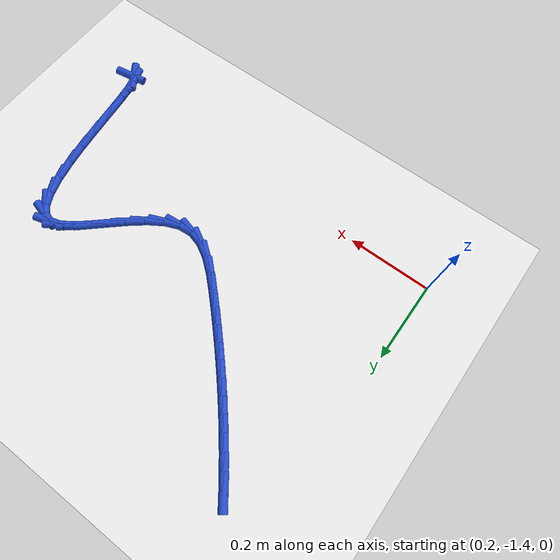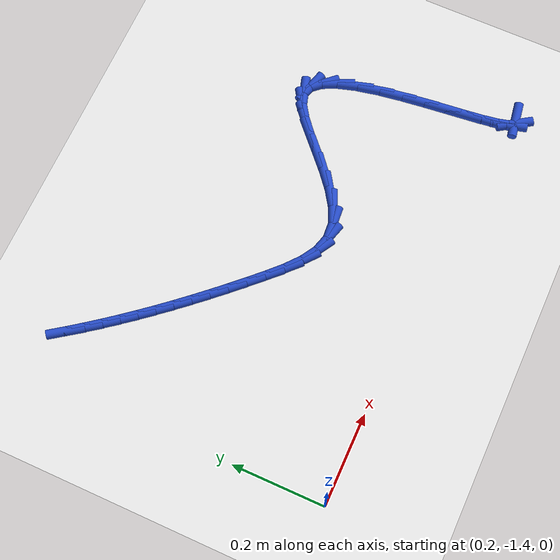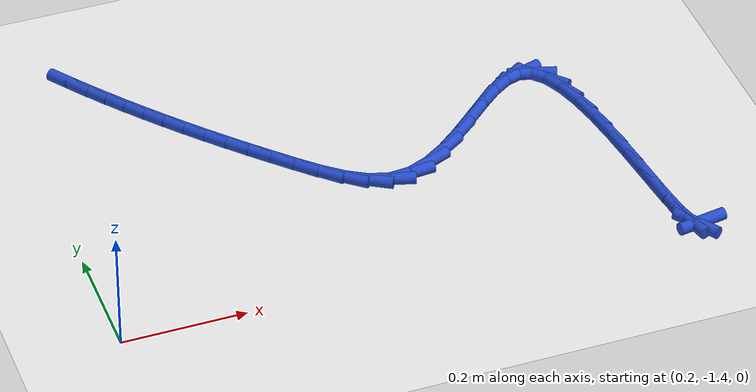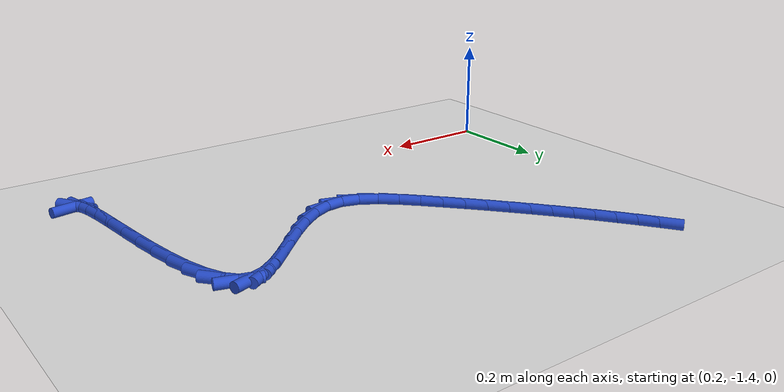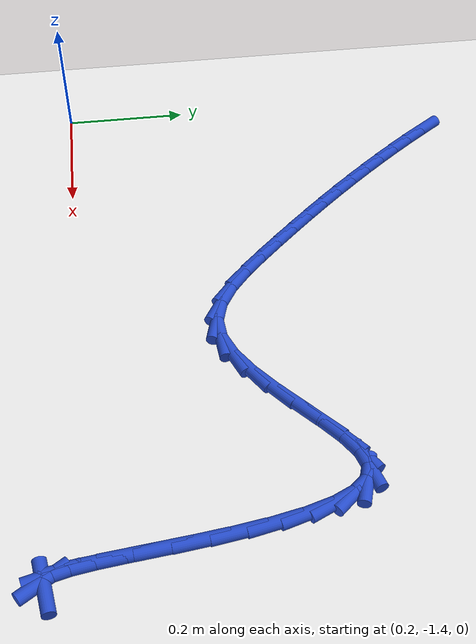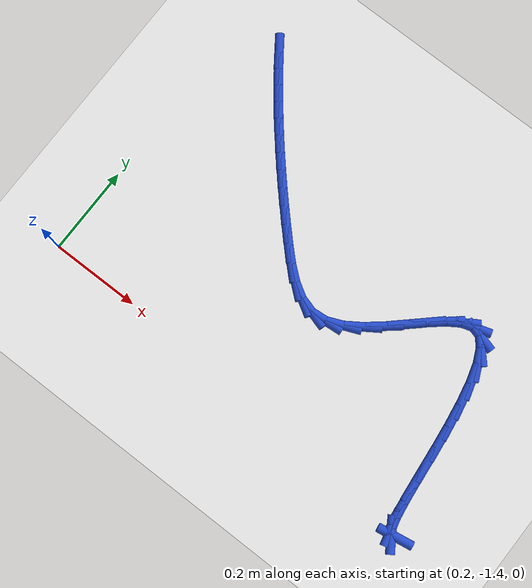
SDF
<sdf version="1.6">
 <world name="default">
  <model name="ground_plane">
   <static>1</static>
   <link name="link">
    <collision name="collision">
     <geometry><plane><normal>0 0 1</normal><size>100 100</size></plane></geometry>
     <surface><friction><ode><mu>100</mu><mu2>50</mu2></ode></friction></surface>
    </collision>
    <visual name="visual">
     <cast_shadows>0</cast_shadows>
     <geometry><plane><normal>0 0 1</normal><size>100 100</size></plane></geometry>
     <material>
      <script><uri>file://media/materials/scripts/gazebo.material</uri><name>Gazebo/WhiteGlow</name></script>
     </material>
    </visual>
   </link>
  </model>
  <model name="line">
   <link name="link_169">
    <pose>1.123807163305679 -1.444839577102646 0.01 0 1.57 0.16254865125649903</pose>
    <collision name="collision">
     <geometry><cylinder><radius>0.01</radius><length>0.08</length></cylinder></geometry>
    </collision>
    <visual name="visual">
     <material>
      <script><name>Gazebo/Blue</name><uri>file://media/materials/scripts/gazebo.material</uri></script>
     </material>
     <geometry><cylinder><radius>0.01</radius><length>0.08</length></cylinder></geometry>
    </visual>
   </link>
   <link name="link_170">
    <pose>1.1149827705949273 -1.4462867384065723 0.01 0 1.57 -0.9904454357600528</pose>
    <collision name="collision">
     <geometry><cylinder><radius>0.01</radius><length>0.08</length></cylinder></geometry>
    </collision>
    <visual name="visual">
     <material>
      <script><name>Gazebo/Blue</name><uri>file://media/materials/scripts/gazebo.material</uri></script>
     </material>
     <geometry><cylinder><radius>0.01</radius><length>0.08</length></cylinder></geometry>
    </visual>
   </link>
   <link name="link_171">
    <pose>1.1076836466904414 -1.4351544262905538 0.01 0 1.57 -1.3181885237503095</pose>
    <collision name="collision">
     <geometry><cylinder><radius>0.01</radius><length>0.08</length></cylinder></geometry>
    </collision>
    <visual name="visual">
     <material>
      <script><name>Gazebo/Blue</name><uri>file://media/materials/scripts/gazebo.material</uri></script>
     </material>
     <geometry><cylinder><radius>0.01</radius><length>0.08</length></cylinder></geometry>
    </visual>
   </link>
   <link name="link_172">
    <pose>1.1016304934707999 -1.4117036456909045 0.01 0 1.57 -1.4159981728100852</pose>
    <collision name="collision">
     <geometry><cylinder><radius>0.01</radius><length>0.08</length></cylinder></geometry>
    </collision>
    <visual name="visual">
     <material>
      <script><name>Gazebo/Blue</name><uri>file://media/materials/scripts/gazebo.material</uri></script>
     </material>
     <geometry><cylinder><radius>0.01</radius><length>0.08</length></cylinder></geometry>
    </visual>
   </link>
   <link name="link_173">
    <pose>1.096397547103324 -1.3781691286143805 0.01 0 1.57 -1.4539515287016036</pose>
    <collision name="collision">
     <geometry><cylinder><radius>0.01</radius><length>0.08</length></cylinder></geometry>
    </collision>
    <visual name="visual">
     <material>
      <script><name>Gazebo/Blue</name><uri>file://media/materials/scripts/gazebo.material</uri></script>
     </material>
     <geometry><cylinder><radius>0.01</radius><length>0.08</length></cylinder></geometry>
    </visual>
   </link>
   <link name="link_174">
    <pose>1.091551656430861 -1.3368851563899982 0.01 0 1.57 -1.4664216416486986</pose>
    <collision name="collision">
     <geometry><cylinder><radius>0.01</radius><length>0.08</length></cylinder></geometry>
    </collision>
    <visual name="visual">
     <material>
      <script><name>Gazebo/Blue</name><uri>file://media/materials/scripts/gazebo.material</uri></script>
     </material>
     <geometry><cylinder><radius>0.01</radius><length>0.08</length></cylinder></geometry>
    </visual>
   </link>
   <link name="link_175">
    <pose>1.0866596702962572 -1.2901860103467704 0.01 0 1.57 -1.4633128278108793</pose>
    <collision name="collision">
     <geometry><cylinder><radius>0.01</radius><length>0.08</length></cylinder></geometry>
    </collision>
    <visual name="visual">
     <material>
      <script><name>Gazebo/Blue</name><uri>file://media/materials/scripts/gazebo.material</uri></script>
     </material>
     <geometry><cylinder><radius>0.01</radius><length>0.08</length></cylinder></geometry>
    </visual>
   </link>
   <link name="link_176">
    <pose>1.081288437542361 -1.2404059718137157 0.01 0 1.57 -1.4470688776996505</pose>
    <collision name="collision">
     <geometry><cylinder><radius>0.01</radius><length>0.08</length></cylinder></geometry>
    </collision>
    <visual name="visual">
     <material>
      <script><name>Gazebo/Blue</name><uri>file://media/materials/scripts/gazebo.material</uri></script>
     </material>
     <geometry><cylinder><radius>0.01</radius><length>0.08</length></cylinder></geometry>
    </visual>
   </link>
   <link name="link_177">
    <pose>1.0750048070120202 -1.1898793221198487 0.01 0 1.57 -1.4161493898350193</pose>
    <collision name="collision">
     <geometry><cylinder><radius>0.01</radius><length>0.08</length></cylinder></geometry>
    </collision>
    <visual name="visual">
     <material>
      <script><name>Gazebo/Blue</name><uri>file://media/materials/scripts/gazebo.material</uri></script>
     </material>
     <geometry><cylinder><radius>0.01</radius><length>0.08</length></cylinder></geometry>
    </visual>
   </link>
   <link name="link_178">
    <pose>1.0673756275480821 -1.140940342594184 0.01 0 1.57 -1.364776546028027</pose>
    <collision name="collision">
     <geometry><cylinder><radius>0.01</radius><length>0.08</length></cylinder></geometry>
    </collision>
    <visual name="visual">
     <material>
      <script><name>Gazebo/Blue</name><uri>file://media/materials/scripts/gazebo.material</uri></script>
     </material>
     <geometry><cylinder><radius>0.01</radius><length>0.08</length></cylinder></geometry>
    </visual>
   </link>
   <link name="link_179">
    <pose>1.057967747993393 -1.095923314565736 0.01 0 1.57 -1.2795409150297383</pose>
    <collision name="collision">
     <geometry><cylinder><radius>0.01</radius><length>0.08</length></cylinder></geometry>
    </collision>
    <visual name="visual">
     <material>
      <script><name>Gazebo/Blue</name><uri>file://media/materials/scripts/gazebo.material</uri></script>
     </material>
     <geometry><cylinder><radius>0.01</radius><length>0.08</length></cylinder></geometry>
    </visual>
   </link>
   <link name="link_180">
    <pose>1.046348017190802 -1.0571625193635237 0.01 0 1.57 -1.1291384458094977</pose>
    <collision name="collision">
     <geometry><cylinder><radius>0.01</radius><length>0.08</length></cylinder></geometry>
    </collision>
    <visual name="visual">
     <material>
      <script><name>Gazebo/Blue</name><uri>file://media/materials/scripts/gazebo.material</uri></script>
     </material>
     <geometry><cylinder><radius>0.01</radius><length>0.08</length></cylinder></geometry>
    </visual>
   </link>
   <link name="link_181">
    <pose>1.032083283983155 -1.0269922383165597 0.01 0 1.57 -0.8373514634935061</pose>
    <collision name="collision">
     <geometry><cylinder><radius>0.01</radius><length>0.08</length></cylinder></geometry>
    </collision>
    <visual name="visual">
     <material>
      <script><name>Gazebo/Blue</name><uri>file://media/materials/scripts/gazebo.material</uri></script>
     </material>
     <geometry><cylinder><radius>0.01</radius><length>0.08</length></cylinder></geometry>
    </visual>
   </link>
   <link name="link_182">
    <pose>1.014740397213301 -1.0077467527538602 0.01 0 1.57 -0.28093226712526403</pose>
    <collision name="collision">
     <geometry><cylinder><radius>0.01</radius><length>0.08</length></cylinder></geometry>
    </collision>
    <visual name="visual">
     <material>
      <script><name>Gazebo/Blue</name><uri>file://media/materials/scripts/gazebo.material</uri></script>
     </material>
     <geometry><cylinder><radius>0.01</radius><length>0.08</length></cylinder></geometry>
    </visual>
   </link>
   <link name="link_183">
    <pose>0.9938914519252556 -1.0017304987347346 0.01 0 1.57 0.29862523486121023</pose>
    <collision name="collision">
     <geometry><cylinder><radius>0.01</radius><length>0.08</length></cylinder></geometry>
    </collision>
    <visual name="visual">
     <material>
      <script><name>Gazebo/Blue</name><uri>file://media/materials/scripts/gazebo.material</uri></script>
     </material>
     <geometry><cylinder><radius>0.01</radius><length>0.08</length></cylinder></geometry>
    </visual>
   </link>
   <link name="link_184">
    <pose>0.9694594894111312 -1.009251403780576 0.01 0 1.57 0.5828584093191366</pose>
    <collision name="collision">
     <geometry><cylinder><radius>0.01</radius><length>0.08</length></cylinder></geometry>
    </collision>
    <visual name="visual">
     <material>
      <script><name>Gazebo/Blue</name><uri>file://media/materials/scripts/gazebo.material</uri></script>
     </material>
     <geometry><cylinder><radius>0.01</radius><length>0.08</length></cylinder></geometry>
    </visual>
   </link>
   <link name="link_185">
    <pose>0.9419334050490917 -1.0273982912902844 0.01 0 1.57 0.7045271127174868</pose>
    <collision name="collision">
     <geometry><cylinder><radius>0.01</radius><length>0.08</length></cylinder></geometry>
    </collision>
    <visual name="visual">
     <material>
      <script><name>Gazebo/Blue</name><uri>file://media/materials/scripts/gazebo.material</uri></script>
     </material>
     <geometry><cylinder><radius>0.01</radius><length>0.08</length></cylinder></geometry>
    </visual>
   </link>
   <link name="link_186">
    <pose>0.911853421018685 -1.0529679900973639 0.01 0 1.57 0.748178597287051</pose>
    <collision name="collision">
     <geometry><cylinder><radius>0.01</radius><length>0.08</length></cylinder></geometry>
    </collision>
    <visual name="visual">
     <material>
      <script><name>Gazebo/Blue</name><uri>file://media/materials/scripts/gazebo.material</uri></script>
     </material>
     <geometry><cylinder><radius>0.01</radius><length>0.08</length></cylinder></geometry>
    </visual>
   </link>
   <link name="link_187">
    <pose>0.8797597594994603 -1.0827573290353183 0.01 0 1.57 0.7425289419034289</pose>
    <collision name="collision">
     <geometry><cylinder><radius>0.01</radius><length>0.08</length></cylinder></geometry>
    </collision>
    <visual name="visual">
     <material>
      <script><name>Gazebo/Blue</name><uri>file://media/materials/scripts/gazebo.material</uri></script>
     </material>
     <geometry><cylinder><radius>0.01</radius><length>0.08</length></cylinder></geometry>
    </visual>
   </link>
   <link name="link_188">
    <pose>0.8461926426709651 -1.1135631369376535 0.01 0 1.57 0.6924900054286713</pose>
    <collision name="collision">
     <geometry><cylinder><radius>0.01</radius><length>0.08</length></cylinder></geometry>
    </collision>
    <visual name="visual">
     <material>
      <script><name>Gazebo/Blue</name><uri>file://media/materials/scripts/gazebo.material</uri></script>
     </material>
     <geometry><cylinder><radius>0.01</radius><length>0.08</length></cylinder></geometry>
    </visual>
   </link>
   <link name="link_189">
    <pose>0.8116922927127497 -1.1421822426378714 0.01 0 1.57 0.5873474112786153</pose>
    <collision name="collision">
     <geometry><cylinder><radius>0.01</radius><length>0.08</length></cylinder></geometry>
    </collision>
    <visual name="visual">
     <material>
      <script><name>Gazebo/Blue</name><uri>file://media/materials/scripts/gazebo.material</uri></script>
     </material>
     <geometry><cylinder><radius>0.01</radius><length>0.08</length></cylinder></geometry>
    </visual>
   </link>
   <link name="link_190">
    <pose>0.7767989318043615 -1.165411474969477 0.01 0 1.57 0.3986747367066922</pose>
    <collision name="collision">
     <geometry><cylinder><radius>0.01</radius><length>0.08</length></cylinder></geometry>
    </collision>
    <visual name="visual">
     <material>
      <script><name>Gazebo/Blue</name><uri>file://media/materials/scripts/gazebo.material</uri></script>
     </material>
     <geometry><cylinder><radius>0.01</radius><length>0.08</length></cylinder></geometry>
    </visual>
   </link>
   <link name="link_191">
    <pose>0.7420527821253495 -1.1800476627659746 0.01 0 1.57 0.0847722710306101</pose>
    <collision name="collision">
     <geometry><cylinder><radius>0.01</radius><length>0.08</length></cylinder></geometry>
    </collision>
    <visual name="visual">
     <material>
      <script><name>Gazebo/Blue</name><uri>file://media/materials/scripts/gazebo.material</uri></script>
     </material>
     <geometry><cylinder><radius>0.01</radius><length>0.08</length></cylinder></geometry>
    </visual>
   </link>
   <link name="link_192">
    <pose>0.7079892207806718 -1.182942245360982 0.01 0 1.57 -0.2800814104062795</pose>
    <collision name="collision">
     <geometry><cylinder><radius>0.01</radius><length>0.08</length></cylinder></geometry>
    </collision>
    <visual name="visual">
     <material>
      <script><name>Gazebo/Blue</name><uri>file://media/materials/scripts/gazebo.material</uri></script>
     </material>
     <geometry><cylinder><radius>0.01</radius><length>0.08</length></cylinder></geometry>
    </visual>
   </link>
   <link name="link_193">
    <pose>0.674923208054617 -1.1734310557928946 0.01 0 1.57 -0.537931428475862</pose>
    <collision name="collision">
     <geometry><cylinder><radius>0.01</radius><length>0.08</length></cylinder></geometry>
    </collision>
    <visual name="visual">
     <material>
      <script><name>Gazebo/Blue</name><uri>file://media/materials/scripts/gazebo.material</uri></script>
     </material>
     <geometry><cylinder><radius>0.01</radius><length>0.08</length></cylinder></geometry>
    </visual>
   </link>
   <link name="link_194">
    <pose>0.6428633068567104 -1.154303437166628 0.01 0 1.57 -0.691113899626166</pose>
    <collision name="collision">
     <geometry><cylinder><radius>0.01</radius><length>0.08</length></cylinder></geometry>
    </collision>
    <visual name="visual">
     <material>
      <script><name>Gazebo/Blue</name><uri>file://media/materials/scripts/gazebo.material</uri></script>
     </material>
     <geometry><cylinder><radius>0.01</radius><length>0.08</length></cylinder></geometry>
    </visual>
   </link>
   <link name="link_195">
    <pose>0.6117954520044355 -1.1286037815858532 0.01 0 1.57 -0.7708574763580924</pose>
    <collision name="collision">
     <geometry><cylinder><radius>0.01</radius><length>0.08</length></cylinder></geometry>
    </collision>
    <visual name="visual">
     <material>
      <script><name>Gazebo/Blue</name><uri>file://media/materials/scripts/gazebo.material</uri></script>
     </material>
     <geometry><cylinder><radius>0.01</radius><length>0.08</length></cylinder></geometry>
    </visual>
   </link>
   <link name="link_196">
    <pose>0.5817055783152759 -1.0993764811542417 0.01 0 1.57 -0.7988185969387164</pose>
    <collision name="collision">
     <geometry><cylinder><radius>0.01</radius><length>0.08</length></cylinder></geometry>
    </collision>
    <visual name="visual">
     <material>
      <script><name>Gazebo/Blue</name><uri>file://media/materials/scripts/gazebo.material</uri></script>
     </material>
     <geometry><cylinder><radius>0.01</radius><length>0.08</length></cylinder></geometry>
    </visual>
   </link>
   <link name="link_197">
    <pose>0.5525781178344619 -1.069456531248069 0.01 0 1.57 -0.8106812663818429</pose>
    <collision name="collision">
     <geometry><cylinder><radius>0.01</radius><length>0.08</length></cylinder></geometry>
    </collision>
    <visual name="visual">
     <material>
      <script><name>Gazebo/Blue</name><uri>file://media/materials/scripts/gazebo.material</uri></script>
     </material>
     <geometry><cylinder><radius>0.01</radius><length>0.08</length></cylinder></geometry>
    </visual>
   </link>
   <link name="link_198">
    <pose>0.5243840142723867 -1.0397994587022674 0.01 0 1.57 -0.8230011563124844</pose>
    <collision name="collision">
     <geometry><cylinder><radius>0.01</radius><length>0.08</length></cylinder></geometry>
    </collision>
    <visual name="visual">
     <material>
      <script><name>Gazebo/Blue</name><uri>file://media/materials/scripts/gazebo.material</uri></script>
     </material>
     <geometry><cylinder><radius>0.01</radius><length>0.08</length></cylinder></geometry>
    </visual>
   </link>
   <link name="link_199">
    <pose>0.49708708916940886 -1.0103683850858092 0.01 0 1.57 -0.8359044172267449</pose>
    <collision name="collision">
     <geometry><cylinder><radius>0.01</radius><length>0.08</length></cylinder></geometry>
    </collision>
    <visual name="visual">
     <material>
      <script><name>Gazebo/Blue</name><uri>file://media/materials/scripts/gazebo.material</uri></script>
     </material>
     <geometry><cylinder><radius>0.01</radius><length>0.08</length></cylinder></geometry>
    </visual>
   </link>
   <link name="link_200">
    <pose>0.4706510997091802 -0.9811174644851851 0.01 0 1.57 -0.8493606868902684</pose>
    <collision name="collision">
     <geometry><cylinder><radius>0.01</radius><length>0.08</length></cylinder></geometry>
    </collision>
    <visual name="visual">
     <material>
      <script><name>Gazebo/Blue</name><uri>file://media/materials/scripts/gazebo.material</uri></script>
     </material>
     <geometry><cylinder><radius>0.01</radius><length>0.08</length></cylinder></geometry>
    </visual>
   </link>
   <link name="link_201">
    <pose>0.4450398030753518 -0.9520008509868841 0.01 0 1.57 -0.8633315077990331</pose>
    <collision name="collision">
     <geometry><cylinder><radius>0.01</radius><length>0.08</length></cylinder></geometry>
    </collision>
    <visual name="visual">
     <material>
      <script><name>Gazebo/Blue</name><uri>file://media/materials/scripts/gazebo.material</uri></script>
     </material>
     <geometry><cylinder><radius>0.01</radius><length>0.08</length></cylinder></geometry>
    </visual>
   </link>
   <link name="link_202">
    <pose>0.42021695645157714 -0.9229726986773993 0.01 0 1.57 -0.8777702680479679</pose>
    <collision name="collision">
     <geometry><cylinder><radius>0.01</radius><length>0.08</length></cylinder></geometry>
    </collision>
    <visual name="visual">
     <material>
      <script><name>Gazebo/Blue</name><uri>file://media/materials/scripts/gazebo.material</uri></script>
     </material>
     <geometry><cylinder><radius>0.01</radius><length>0.08</length></cylinder></geometry>
    </visual>
   </link>
   <link name="link_203">
    <pose>0.39614631702150727 -0.8939871616432197 0.01 0 1.57 -0.8926223729739672</pose>
    <collision name="collision">
     <geometry><cylinder><radius>0.01</radius><length>0.08</length></cylinder></geometry>
    </collision>
    <visual name="visual">
     <material>
      <script><name>Gazebo/Blue</name><uri>file://media/materials/scripts/gazebo.material</uri></script>
     </material>
     <geometry><cylinder><radius>0.01</radius><length>0.08</length></cylinder></geometry>
    </visual>
   </link>
   <link name="link_204">
    <pose>0.37279164196879416 -0.8649983939708361 0.01 0 1.57 -0.9078256697488131</pose>
    <collision name="collision">
     <geometry><cylinder><radius>0.01</radius><length>0.08</length></cylinder></geometry>
    </collision>
    <visual name="visual">
     <material>
      <script><name>Gazebo/Blue</name><uri>file://media/materials/scripts/gazebo.material</uri></script>
     </material>
     <geometry><cylinder><radius>0.01</radius><length>0.08</length></cylinder></geometry>
    </visual>
   </link>
   <link name="link_205">
    <pose>0.35011668847708965 -0.8359605497467391 0.01 0 1.57 -0.9233111352400633</pose>
    <collision name="collision">
     <geometry><cylinder><radius>0.01</radius><length>0.08</length></cylinder></geometry>
    </collision>
    <visual name="visual">
     <material>
      <script><name>Gazebo/Blue</name><uri>file://media/materials/scripts/gazebo.material</uri></script>
     </material>
     <geometry><cylinder><radius>0.01</radius><length>0.08</length></cylinder></geometry>
    </visual>
   </link>
   <link name="link_206">
    <pose>0.3280852137300452 -0.8068277830574183 0.01 0 1.57 -0.9390038229910505</pose>
    <collision name="collision">
     <geometry><cylinder><radius>0.01</radius><length>0.08</length></cylinder></geometry>
    </collision>
    <visual name="visual">
     <material>
      <script><name>Gazebo/Blue</name><uri>file://media/materials/scripts/gazebo.material</uri></script>
     </material>
     <geometry><cylinder><radius>0.01</radius><length>0.08</length></cylinder></geometry>
    </visual>
   </link>
   <link name="link_207">
    <pose>0.3066609749113136 -0.7775542479893657 0.01 0 1.57 -0.954824049144022</pose>
    <collision name="collision">
     <geometry><cylinder><radius>0.01</radius><length>0.08</length></cylinder></geometry>
    </collision>
    <visual name="visual">
     <material>
      <script><name>Gazebo/Blue</name><uri>file://media/materials/scripts/gazebo.material</uri></script>
     </material>
     <geometry><cylinder><radius>0.01</radius><length>0.08</length></cylinder></geometry>
    </visual>
   </link>
  </model>
 </world>
</sdf>
